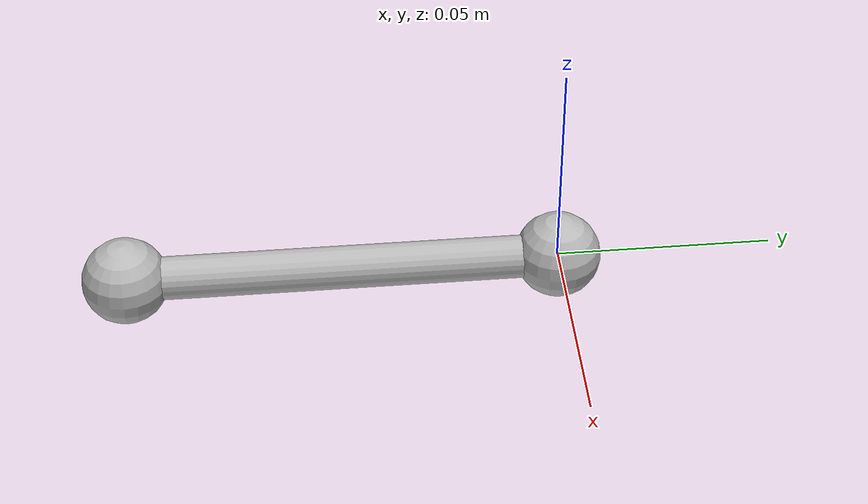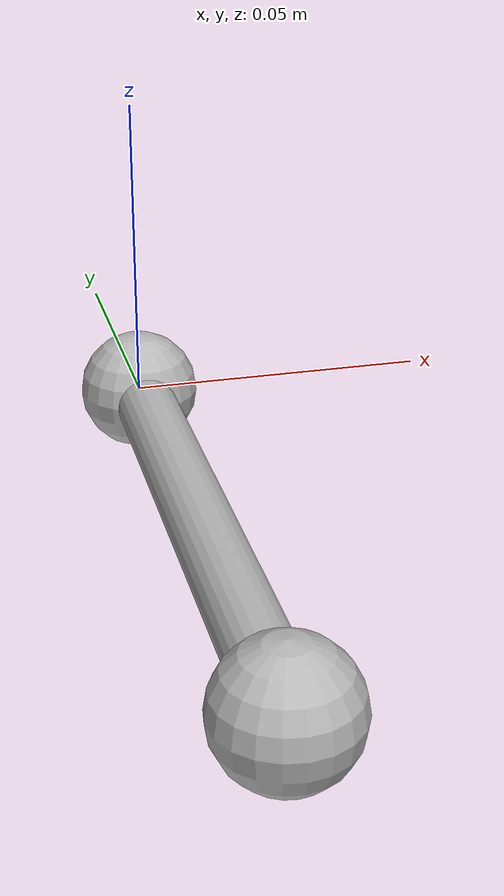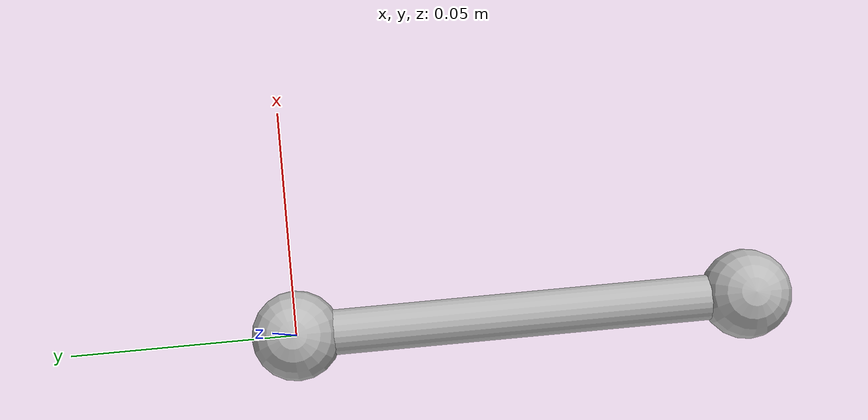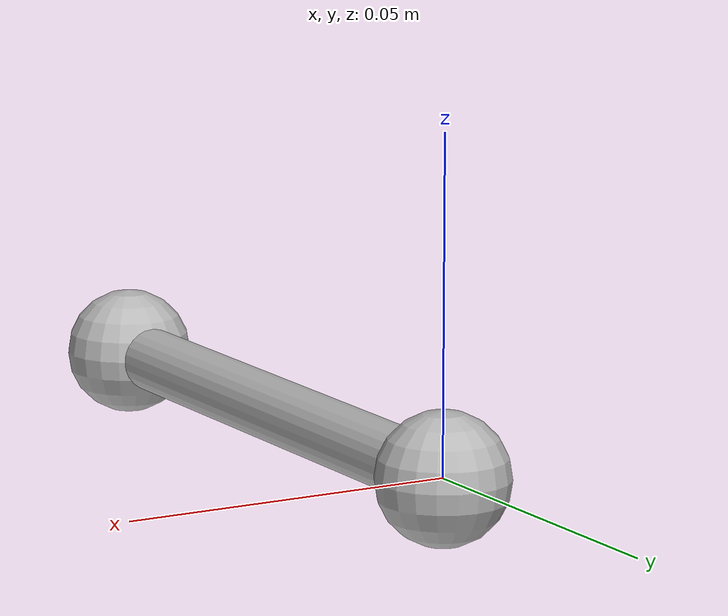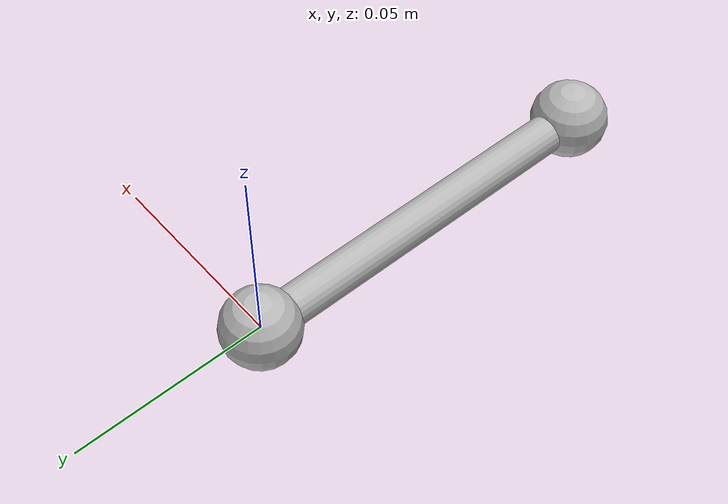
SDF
<?xml version="1.0"?>
<sdf version="1.5">
  <model name="force_sensor">
      <link name="force_sensor_base">
        <pose>0 0 0 0 0 0</pose>

        <inertial>
          <inertia>
            <ixx>0.000000004</ixx>
            <ixy>0.000000</ixy>
            <ixz>0.000000004</ixz>
            <iyy>0.00</iyy>
            <iyz>0.0000000</iyz>
            <izz>0.000000004</izz>
          </inertia>
          <mass>0.0001</mass>
        </inertial>

        <visual name="visual_sphere">
          <geometry>
            <sphere>
              <radius>0.010000</radius>
            </sphere>
          </geometry>
        </visual>
      </link>

      <link name="link_force">
        <pose>0 -0.1 0 0 0 0</pose>

        <inertial>
          <inertia>
            <ixx>0.0000000400000</ixx>
            <ixy>0.000000</ixy>
            <ixz>0.000000</ixz>
            <iyy>0.0000000400000</iyy>
            <iyz>0.000000</iyz>
            <izz>0.0000000400000</izz>
          </inertia>
          <mass>0.0010000</mass>
        </inertial>

        <visual name="visual_sphere">
          <geometry>
            <sphere>
              <radius>0.010000</radius>
            </sphere>
          </geometry>
        </visual>
        <visual name="visual_cylinder">
          <pose>0 0.05 0 1.57 0 0</pose>
          <geometry>
            <cylinder>
              <radius>0.0050000</radius>
              <length>0.1</length>
            </cylinder>
          </geometry>
        </visual>
        <collision name="collision_sphere">
          <max_contacts>250</max_contacts>
          <geometry>
            <sphere>
              <radius>0.010000</radius>
            </sphere>
          </geometry>
        </collision>
      </link>

      <joint name="joint_02" type="revolute">
        <parent>force_sensor_base</parent>
        <child>link_force</child>
        <pose>0 0.1 0 0 0 0</pose>
        <axis>
          <limit>
            <lower>-1.57079</lower>
            <upper>1.57079</upper>
          </limit>
          <dynamics>
            <spring_stiffness>0.02</spring_stiffness>
            <damping>0.0005</damping>
            <friction>0.00010000</friction>
          </dynamics>
          <xyz>0.000000 0.000000 1.000000</xyz>
        </axis>
        <sensor name="force_torque" type="force_torque">
          <update_rate>30</update_rate>
        </sensor>
      </joint>
    </model>
</sdf>
